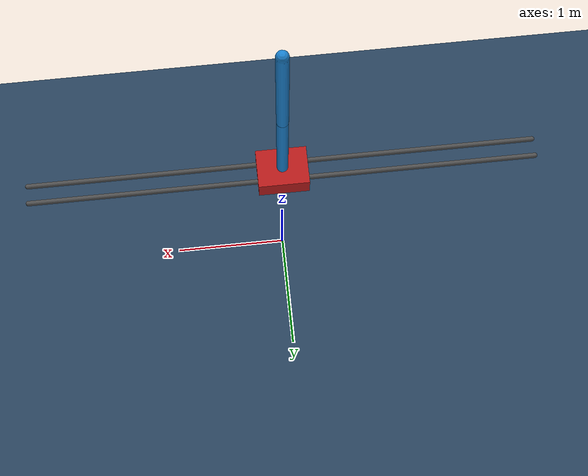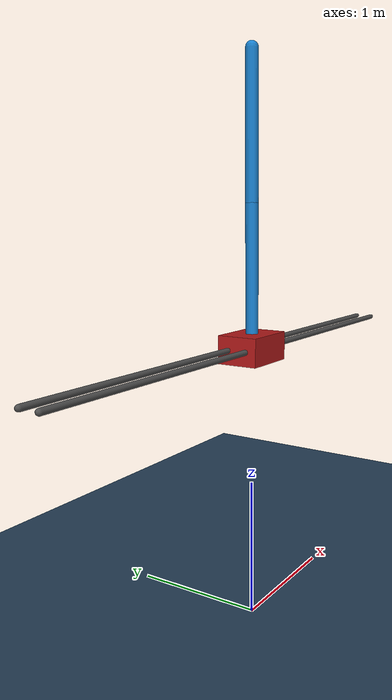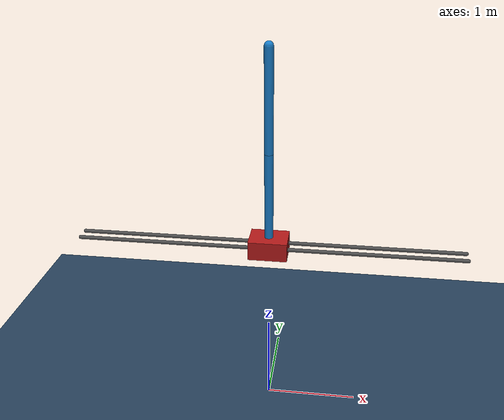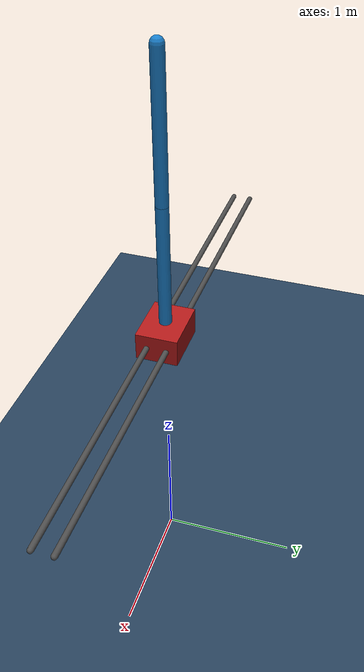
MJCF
<mujoco model="cartpole_double">
  <default>
    <default class="pole">
      <joint type="hinge" axis="0 1 0" damping="2e-6"/>
      <geom type="capsule" fromto="0 0 0 0 0 1" size="0.045" material="pole" mass=".1"/>
    </default>
  </default>

  <asset>
    <texture name="grid" type="2d" builtin="checker" rgb1=".1 .2 .3" rgb2=".2 .3 .4" width="300" height="300"/>
    <material name="grid" texture="grid" texrepeat="8 8" reflectance=".2"/>
    <material name="cart" rgba=".7 .1 .1 1"/>
    <material name="pole" rgba=".1 .5 .8 1"/>
    <material name="decoration" rgba=".3 .3 .3 1"/>
  </asset>

  <worldbody>
    <light name="light" pos="0 0 6"/>
    <camera name="fixed" pos="0 -4 2" zaxis="0 -1 0"/>
    <camera name="lookatcart" mode="targetbody" target="cart" pos="0 -2 2"/>
    <geom name="floor" pos="0 0 -.05" size="4 4 .2" type="plane" material="grid"/>
    <geom name="rail1" type="capsule" pos="0 .07 2" zaxis="1 0 0" size="0.02 2" material="decoration"/>
    <geom name="rail2" type="capsule" pos="0 -.07 2" zaxis="1 0 0" size="0.02 2" material="decoration"/>
    <body name="cart" pos="0 0 2">
      <joint name="slider" type="slide" limited="true" axis="1 0 0" range="-1.8 1.8" solreflimit=".08 1" damping="5e-4"/>
      <geom name="cart" type="box" size="0.2 0.15 0.1" material="cart" mass="1"/>
      <body name="pole_1" childclass="pole">
        <joint name="hinge_1"/>
        <geom name="pole_1"/>
        <body name="pole_2" pos="0 0 1" childclass="pole">
          <joint name="hinge_2"/>
          <geom name="pole_2"/>
        </body>
      </body>
    </body>
  </worldbody>

  <actuator>
    <motor name="slide" joint="slider" gear="10" ctrllimited="true" ctrlrange="-1 1"/>
  </actuator>
</mujoco>
